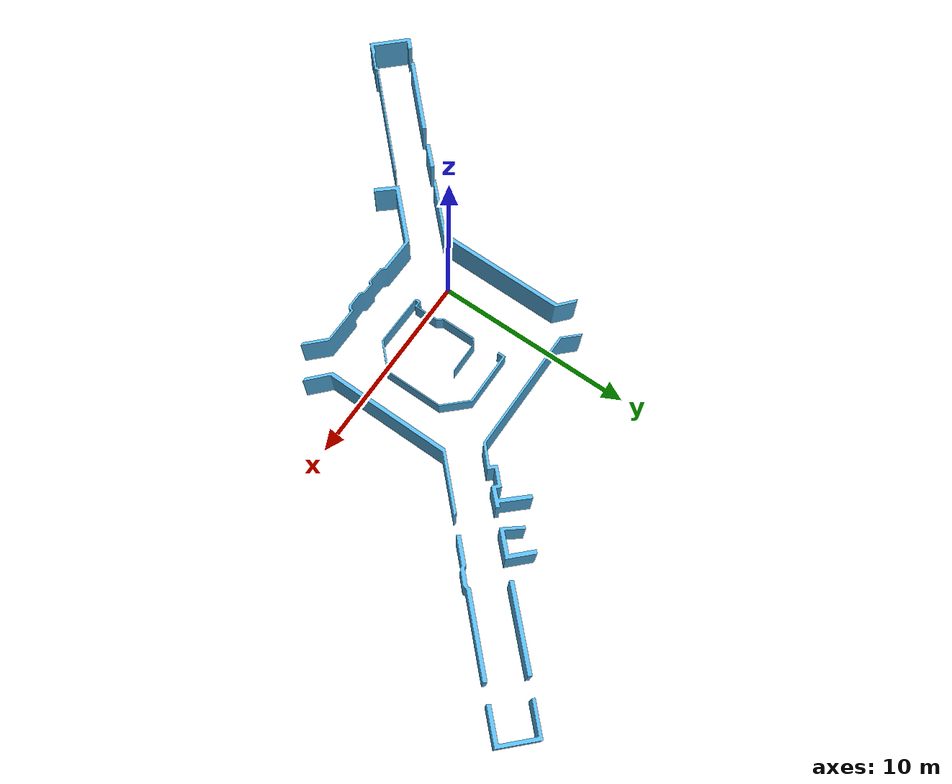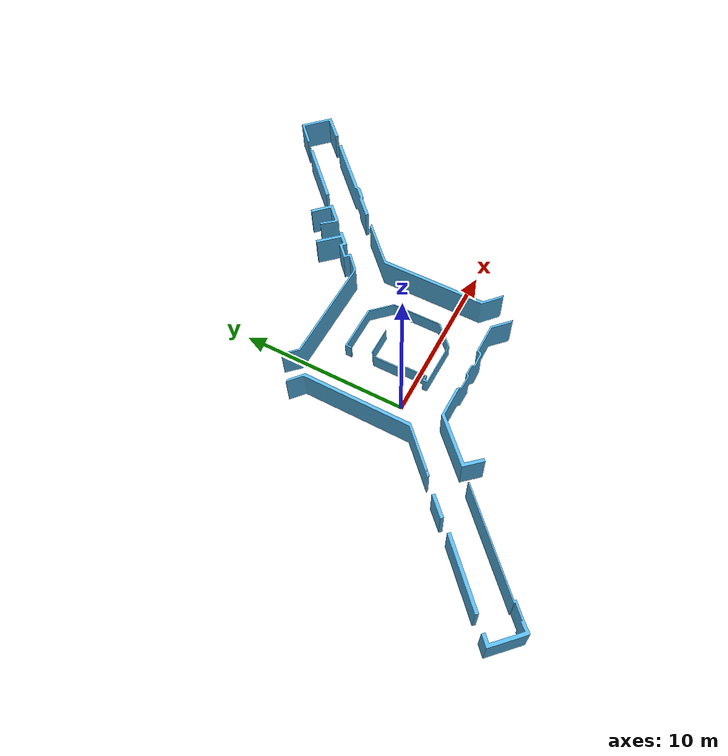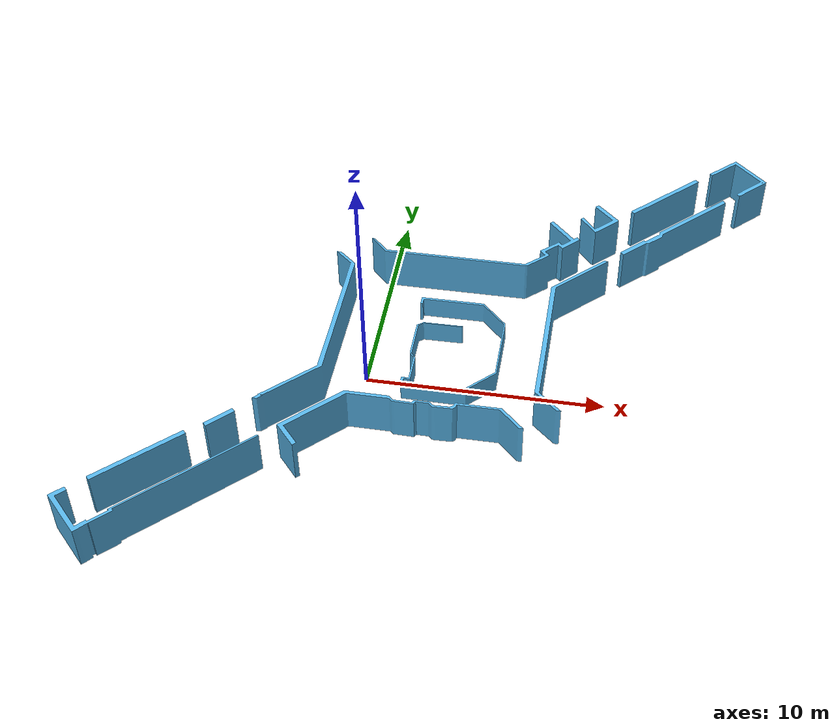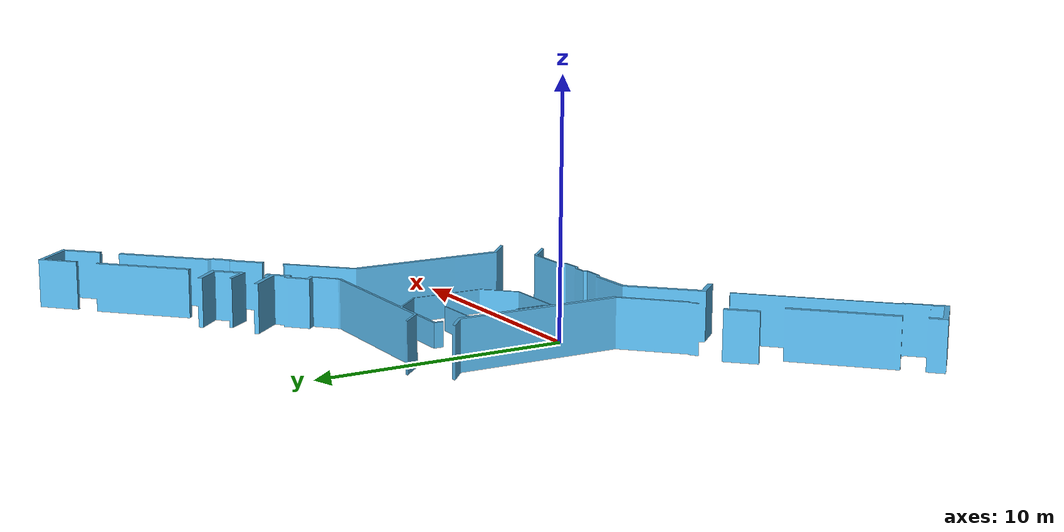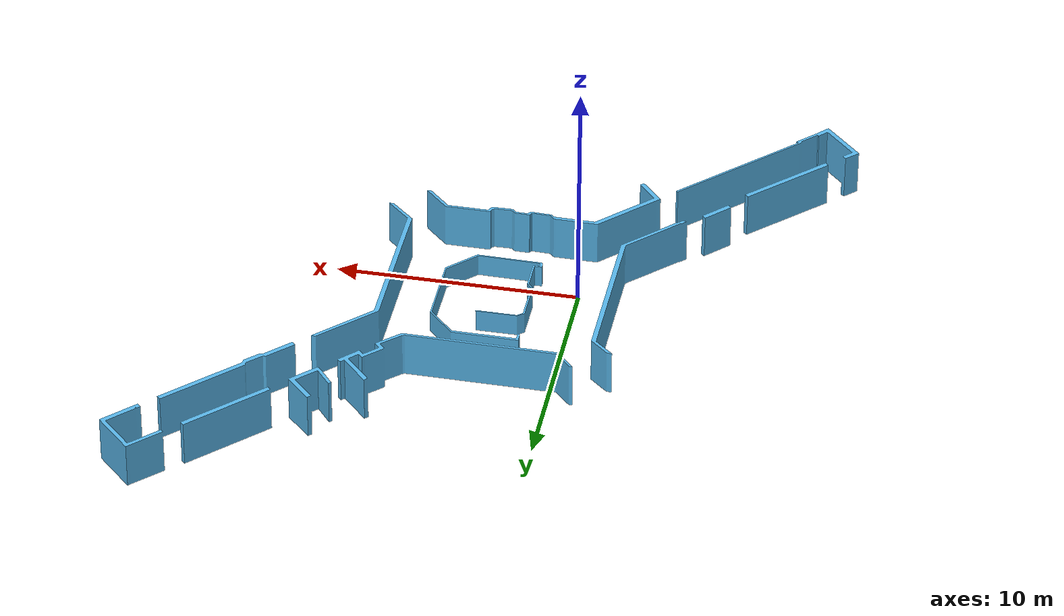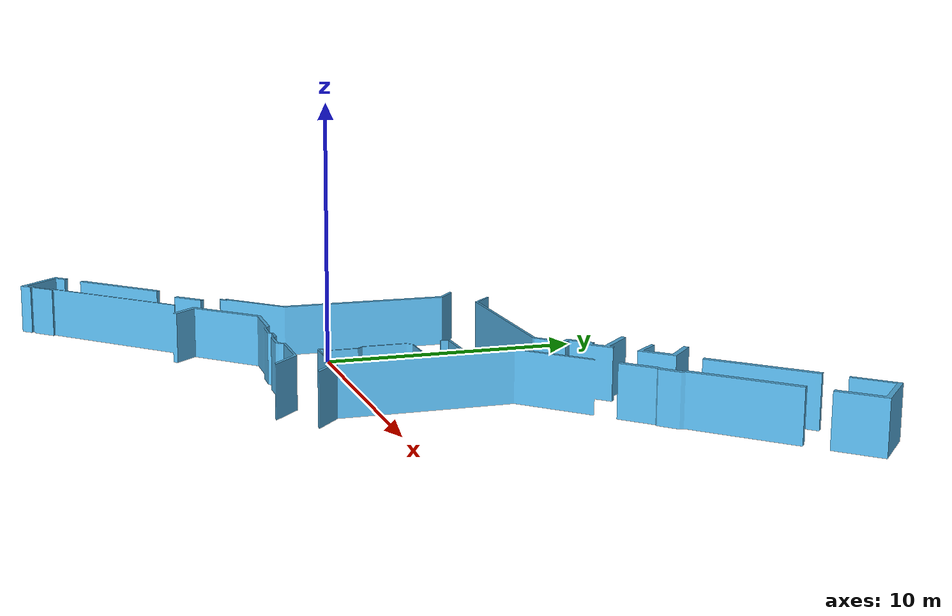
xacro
<?xml version="1.0"?>
<robot xmlns:xacro="http://www.ros.org/wiki/xacro"
       name="ipa-office">

  <xacro:include filename="$(find cob_gazebo_worlds)/urdf/common.xacro" />
  <xacro:include filename="$(find cob_gazebo_worlds)/urdf/materials.urdf.xacro" />

  <xacro:macro name="ipa-office" params="name">

    <gazebo>
      <plugin name="environment_gazebo_ros_control" filename="libgazebo_ros_control.so">
        <robotNamespace>world</robotNamespace>
        <robotParam>/world_description</robotParam>
      </plugin>
    </gazebo>

    <link name="world"/>

    <link name="walls">
      <inertial>
        <mass value="1.37" />
        <origin xyz="0 0 0.0" />
        <inertia ixx="1.0" ixy="0.0" ixz="0.0" iyy="1.0" iyz="0.0" izz="1.0"/>
      </inertial>
      <visual>
        <origin xyz="6.75 0.25 0" rpy="0 0 0" />
        <geometry>
          <mesh filename="package://cob_gazebo_worlds/Media/models/ipa-office_walls.dae" scale="0.97 0.97 0.97"/>
        </geometry>
      </visual>
      <collision>
        <origin xyz="6.75 0.25 0" rpy="0 0 0" />
        <geometry>
          <mesh filename="package://cob_gazebo_worlds/Media/models/ipa-office_walls.dae" scale="0.97 0.97 0.97"/>
        </geometry>
      </collision>
    </link>

    <gazebo>
      <static>true</static>
    </gazebo>

    <joint name="joint_walls" type="fixed">
      <origin xyz="0 0 0" rpy="0 0 0" />
      <parent link="world" />
      <child link="walls" />
    </joint>

  </xacro:macro>

  <xacro:ipa-office name="ipa-office" />

</robot>

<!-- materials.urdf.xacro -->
<robot>

  <material name="IPA/Blue">
    <color rgba="0.0 0.0 0.8 1.0"/>
  </material>

  <material name="IPA/Green">
    <color rgba="0.0 0.8 0.0 1.0"/>
  </material>

  <material name="IPA/Grey">
    <color rgba="0.7 0.7 0.7 1.0"/>
  </material>

  <material name="IPA/Grey2">
    <color rgba="0.81 0.81 0.81 1.0"/>
  </material>

  <material name="IPA/Red">
    <color rgba="0.8 0.0 0.0 1.0"/>
  </material>

  <material name="IPA/White">
    <color rgba="1.0 1.0 1.0 1.0"/>
  </material>

  <material name="IPA/Black">
    <color rgba="0.0 0.0 0.0 1.0"/>
  </material>

  <material name="IPA/Transparent">
    <color rgba="0.81 0.81 0.81 0.0"/>
  </material>

  <material name="IPA/LightBlue">
    <color rgba="0.624 0.698 0.858 1"/>
  </material>

</robot>
